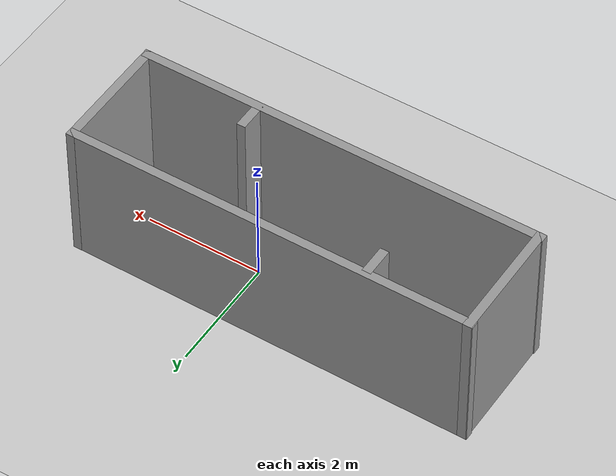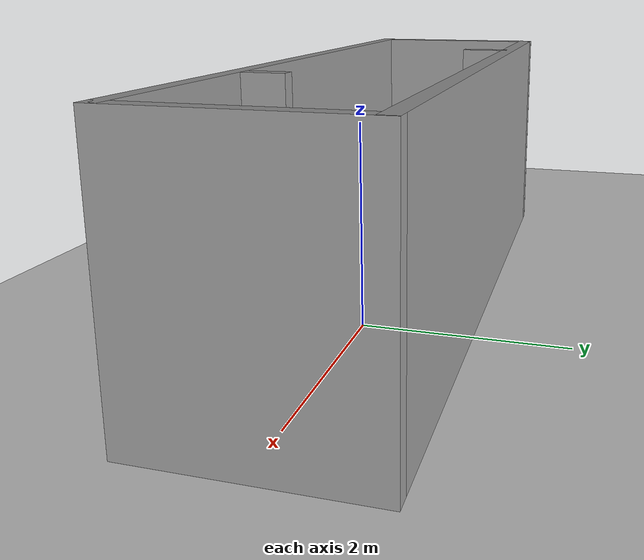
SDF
<sdf version="1.6">
 <world name="default">
  <light name="sun" type="directional">
   <pose>0 0 10 0 -0 0</pose>
   <diffuse>0.8 0.8 0.8 1</diffuse>
   <specular>0.2 0.2 0.2 1</specular>
   <attenuation>
    <range>1000</range>
    <constant>0.9</constant>
    <linear>0.01</linear>
    <quadratic>0.001</quadratic>
   </attenuation>
   <direction>-0.5 0.1 -0.9</direction>
  </light>
  <model name="ground_plane">
   <static>1</static>
   <link name="link">
    <collision name="collision">
     <geometry><plane><normal>0 0 1</normal><size>100 100</size></plane></geometry>
     <surface><friction><ode><mu>100</mu><mu2>50</mu2></ode></friction></surface>
    </collision>
    <visual name="visual">
     <cast_shadows>0</cast_shadows>
     <geometry><plane><normal>0 0 1</normal><size>100 100</size></plane></geometry>
     <material>
      <script><uri>file://media/materials/scripts/gazebo.material</uri><name>Gazebo/Grey</name></script>
     </material>
    </visual>
   </link>
  </model>
  <gravity>0 0 -9.8</gravity>
  <magnetic_field>6e-06 2.3e-05 -4.2e-05</magnetic_field>
  <atmosphere type="adiabatic"/>
  <physics name="default_physics" default="0" type="ode">
   <max_step_size>0.001</max_step_size>
   <real_time_factor>1</real_time_factor>
   <real_time_update_rate>1000</real_time_update_rate>
  </physics>
  <scene><ambient>0.4 0.4 0.4 1</ambient><background>0.7 0.7 0.7 1</background><shadows>1</shadows></scene>
  <audio><device>default</device></audio>
  <spherical_coordinates>
   <surface_model>EARTH_WGS84</surface_model>
   <latitude_deg>0</latitude_deg>
   <longitude_deg>0</longitude_deg>
   <elevation>0</elevation>
   <heading_deg>0</heading_deg>
  </spherical_coordinates>
  <model name="Untitled">
   <pose>-0.830679 0.037937 0 0 -0 0</pose>
   <link name="Wall_13">
    <collision name="Wall_13_Collision">
     <geometry><box><size>7 0.15 2.5</size></box></geometry>
     <pose>0 0 1.25 0 -0 0</pose>
    </collision>
    <visual name="Wall_13_Visual">
     <pose>0 0 1.25 0 -0 0</pose>
     <geometry><box><size>7 0.15 2.5</size></box></geometry>
     <material>
      <script><uri>file://media/materials/scripts/gazebo.material</uri><name>Gazebo/Grey</name></script>
      <ambient>1 1 1 1</ambient>
     </material>
     <meta><layer>0</layer></meta>
    </visual>
    <pose>-0.007604 -0.974901 0 0 -0 0</pose>
   </link>
   <link name="Wall_14">
    <collision name="Wall_14_Collision">
     <geometry><box><size>2.10004 0.15 2.5</size></box></geometry>
     <pose>0 0 1.25 0 -0 0</pose>
    </collision>
    <visual name="Wall_14_Visual">
     <pose>0 0 1.25 0 -0 0</pose>
     <geometry><box><size>2.10004 0.15 2.5</size></box></geometry>
     <material>
      <script><uri>file://media/materials/scripts/gazebo.material</uri><name>Gazebo/Grey</name></script>
      <ambient>1 1 1 1</ambient>
     </material>
     <meta><layer>0</layer></meta>
    </visual>
    <pose>3.4326 -0 0 0 -0 1.5708</pose>
   </link>
   <link name="Wall_15">
    <collision name="Wall_15_Collision">
     <geometry><box><size>7 0.15 2.5</size></box></geometry>
     <pose>0 0 1.25 0 -0 0</pose>
    </collision>
    <visual name="Wall_15_Visual">
     <pose>0 0 1.25 0 -0 0</pose>
     <geometry><box><size>7 0.15 2.5</size></box></geometry>
     <material>
      <script><uri>file://media/materials/scripts/gazebo.material</uri><name>Gazebo/Grey</name></script>
      <ambient>1 1 1 1</ambient>
     </material>
     <meta><layer>0</layer></meta>
    </visual>
    <pose>-0.007604 0.974901 0 0 -0 3.14159</pose>
   </link>
   <link name="Wall_16">
    <collision name="Wall_16_Collision">
     <geometry><box><size>2.10004 0.15 2.5</size></box></geometry>
     <pose>0 0 1.25 0 -0 0</pose>
    </collision>
    <visual name="Wall_16_Visual">
     <pose>0 0 1.25 0 -0 0</pose>
     <geometry><box><size>2.10004 0.15 2.5</size></box></geometry>
     <material>
      <script><uri>file://media/materials/scripts/gazebo.material</uri><name>Gazebo/Grey</name></script>
      <ambient>1 1 1 1</ambient>
     </material>
     <meta><layer>0</layer></meta>
    </visual>
    <pose>-3.41739 -0 0 0 -0 -1.5708</pose>
   </link>
   <link name="Wall_18">
    <collision name="Wall_18_Collision">
     <geometry><box><size>0.5 0.15 2.5</size></box></geometry>
     <pose>0 0 1.25 0 -0 0</pose>
    </collision>
    <visual name="Wall_18_Visual">
     <pose>0 0 1.25 0 -0 0</pose>
     <geometry><box><size>0.5 0.15 2.5</size></box></geometry>
     <material>
      <script><uri>file://media/materials/scripts/gazebo.material</uri><name>Gazebo/Grey</name></script>
      <ambient>1 1 1 1</ambient>
     </material>
     <meta><layer>0</layer></meta>
    </visual>
    <pose>-1.6836 0.705567 0 0 -0 -1.5708</pose>
   </link>
   <link name="Wall_20">
    <collision name="Wall_20_Collision">
     <geometry><box><size>0.5 0.15 2.5</size></box></geometry>
     <pose>0 0 1.25 0 -0 0</pose>
    </collision>
    <visual name="Wall_20_Visual">
     <pose>0 0 1.25 0 -0 0</pose>
     <geometry><box><size>0.5 0.15 2.5</size></box></geometry>
     <material>
      <script><uri>file://media/materials/scripts/gazebo.material</uri><name>Gazebo/Grey</name></script>
      <ambient>1 1 1 1</ambient>
     </material>
     <meta><layer>0</layer></meta>
    </visual>
    <pose>1.41899 -0.739066 0 0 -0 1.5708</pose>
   </link>
   <static>1</static>
  </model>
 </world>
</sdf>
